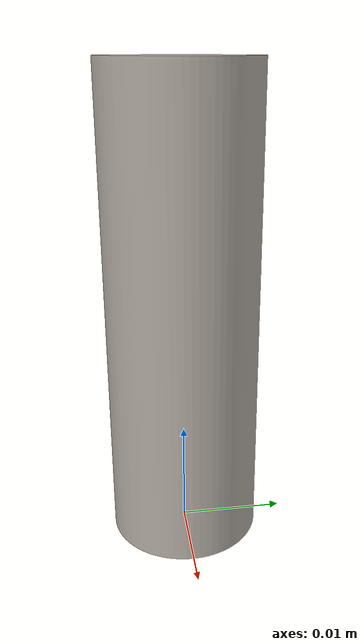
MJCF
<mujoco model="Round_peg_16mm">
  <asset>
    <mesh file="../task1_stl_files_correct_pos/Round_peg_16mm.stl" name="peg mesh" scale="0.0009 0.0009 0.0009"/>
    <texture file="../textures/ceramic.png" type="2d" name="tex-peg" />
    <material name="peg" reflectance="0.7" texrepeat="15 15" texture="tex-peg" texuniform="true"/>
  </asset>
  <worldbody>
    <body>
      <body name="object">
        <geom pos="0 0 0" mesh="peg mesh" type="mesh" solimp="0.998 0.998 0.001" solref="0.001 1" density="50" friction="2 0.9 0.5"  material="peg" group="0" condim="4"/>
      </body>
      <site rgba="0 0 0 0" size="0.005" pos="0 0 0" name="bottom_site"/>
      <site rgba="0 0 0 0" size="0.005" pos="0 0 0.05" name="top_site"/>
      <site rgba="0 0 0 0" size="0.005" pos="-0.03 -0.03 0" name="horizontal_radius_site"/>
    </body>
  </worldbody>
</mujoco>
